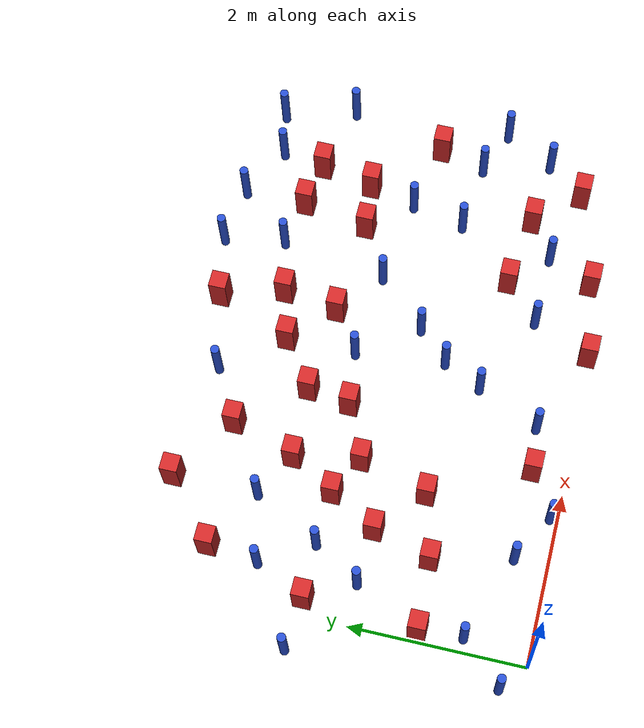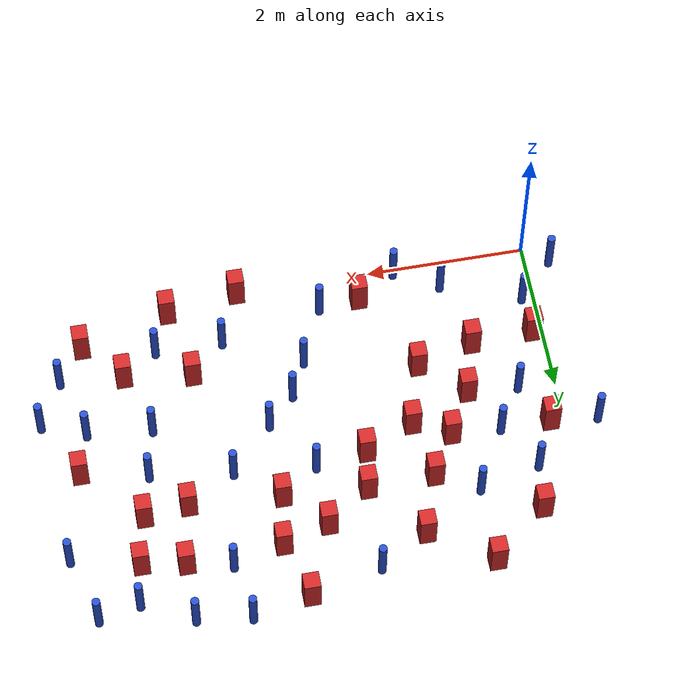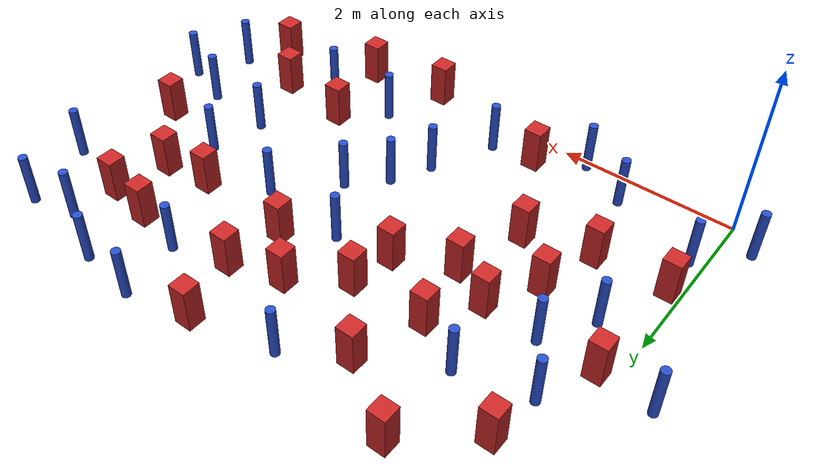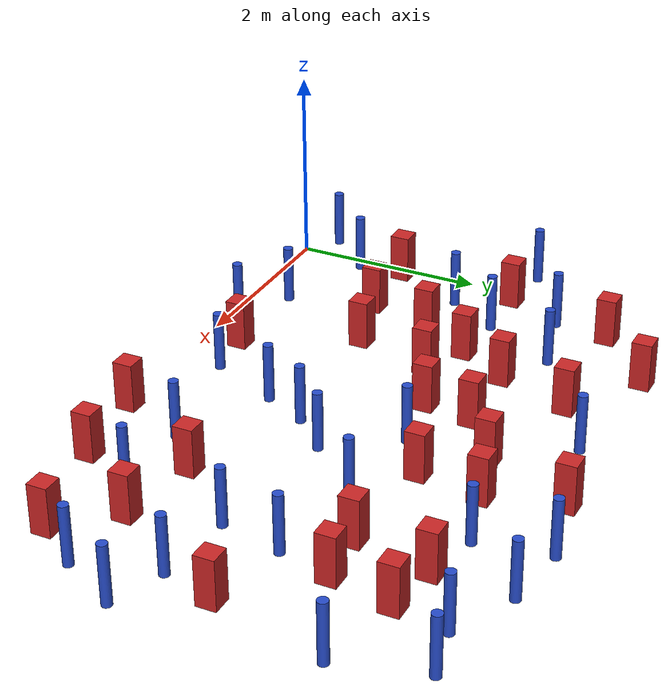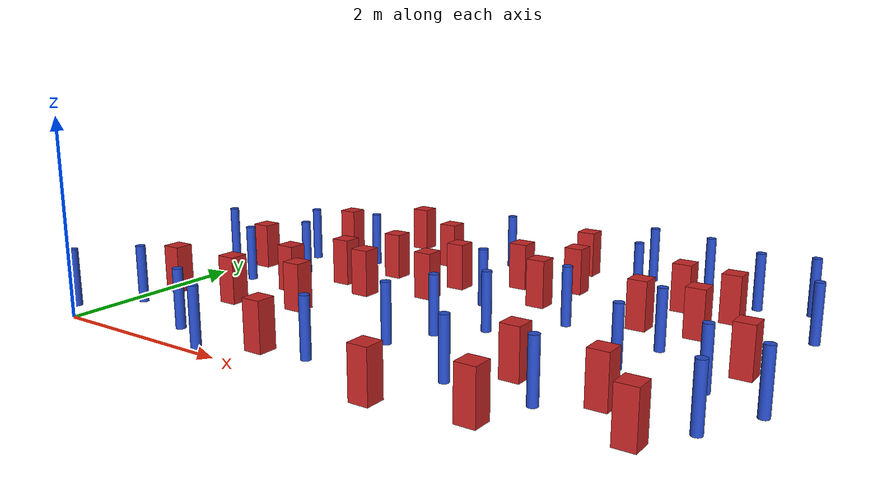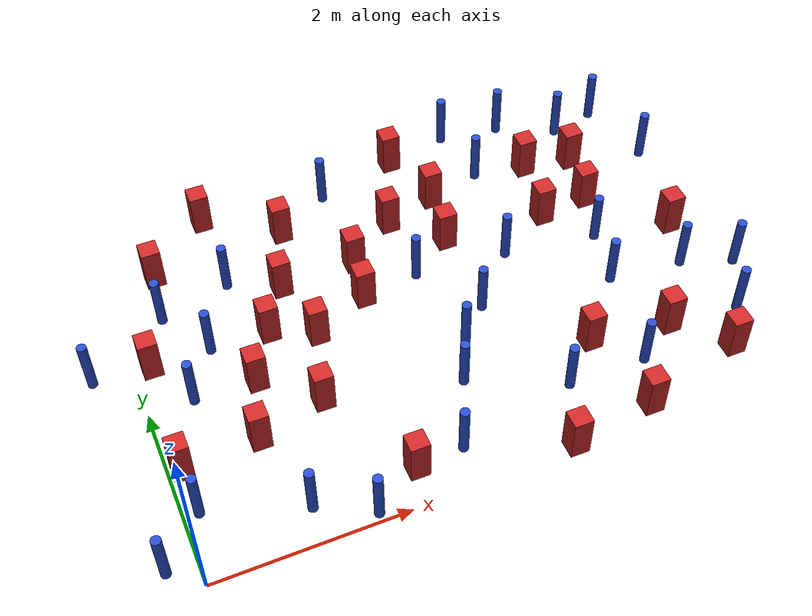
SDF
<sdf version="1.6">
 <model name="dense_93">
  <model name="pole_obstacle7">
   <static>true</static>
   <pose>6.06499540367 0.939890969461 -9.47619616065e-06 5.49618799737e-07 2.36310414061e-07 -1.550905348e-07</pose>
   <link name="link">
    <pose>0 0 0.3 0 -0 0</pose>
    <inertial>
     <mass>1</mass>
     <inertia><ixx>0.145833</ixx><ixy>0</ixy><ixz>0</ixz><iyy>0.145833</iyy><iyz>0</iyz><izz>0.125</izz></inertia>
    </inertial>
    <collision name="collision">
     <geometry><cylinder><radius>0.05</radius><length>.6</length></cylinder></geometry>
    </collision>
    <visual name="visual">
     <geometry><cylinder><radius>0.05</radius><length>.6</length></cylinder></geometry>
     <material>
      <script><name>Gazebo/Blue</name><uri>file://media/materials/scripts/gazebo.material</uri></script>
     </material>
    </visual>
   </link>
  </model>
  <model name="square_post_obstacle7">
   <static>true</static>
   <pose>5.3043008412 2.97691154818 -6.11067671241e-07 -5.50515727128e-06 -8.79689657224e-07 2.37013304536e-05</pose>
   <link name="link">
    <pose>0 0 0.25 0 -0 0</pose>
    <inertial>
     <mass>100</mass>
     <inertia>
      <ixx>0.166667</ixx>
      <ixy>0</ixy>
      <ixz>0</ixz>
      <iyy>0.166667</iyy>
      <iyz>0</iyz>
      <izz>0.166667</izz>
     </inertia>
    </inertial>
    <collision name="collision"><geometry><box><size>.2 .2 .5</size></box></geometry></collision>
    <visual name="visual">
     <geometry><box><size>.2 .2 .5</size></box></geometry>
     <material>
      <script><name>Gazebo/Red</name><uri>file://media/materials/scripts/gazebo.material</uri></script>
     </material>
    </visual>
   </link>
  </model>
  <model name="square_post_obstacle8">
   <static>true</static>
   <pose>4.60553726486 0.183681502526 -6.11067671241e-07 -5.50515727128e-06 -8.79689657224e-07 2.37013304536e-05</pose>
   <link name="link">
    <pose>0 0 0.25 0 -0 0</pose>
    <inertial>
     <mass>100</mass>
     <inertia>
      <ixx>0.166667</ixx>
      <ixy>0</ixy>
      <ixz>0</ixz>
      <iyy>0.166667</iyy>
      <iyz>0</iyz>
      <izz>0.166667</izz>
     </inertia>
    </inertial>
    <collision name="collision"><geometry><box><size>.2 .2 .5</size></box></geometry></collision>
    <visual name="visual">
     <geometry><box><size>.2 .2 .5</size></box></geometry>
     <material>
      <script><name>Gazebo/Red</name><uri>file://media/materials/scripts/gazebo.material</uri></script>
     </material>
    </visual>
   </link>
  </model>
  <model name="square_post_obstacle15">
   <static>true</static>
   <pose>5.73411436721 0.501680926353 -6.11067671241e-07 -5.50515727128e-06 -8.79689657224e-07 2.37013304536e-05</pose>
   <link name="link">
    <pose>0 0 0.25 0 -0 0</pose>
    <inertial>
     <mass>100</mass>
     <inertia>
      <ixx>0.166667</ixx>
      <ixy>0</ixy>
      <ixz>0</ixz>
      <iyy>0.166667</iyy>
      <iyz>0</iyz>
      <izz>0.166667</izz>
     </inertia>
    </inertial>
    <collision name="collision"><geometry><box><size>.2 .2 .5</size></box></geometry></collision>
    <visual name="visual">
     <geometry><box><size>.2 .2 .5</size></box></geometry>
     <material>
      <script><name>Gazebo/Red</name><uri>file://media/materials/scripts/gazebo.material</uri></script>
     </material>
    </visual>
   </link>
  </model>
  <model name="square_post_obstacle17">
   <static>true</static>
   <pose>1.22932830109 4.28504683522 -6.11067671241e-07 -5.50515727128e-06 -8.79689657224e-07 2.37013304536e-05</pose>
   <link name="link">
    <pose>0 0 0.25 0 -0 0</pose>
    <inertial>
     <mass>100</mass>
     <inertia>
      <ixx>0.166667</ixx>
      <ixy>0</ixy>
      <ixz>0</ixz>
      <iyy>0.166667</iyy>
      <iyz>0</iyz>
      <izz>0.166667</izz>
     </inertia>
    </inertial>
    <collision name="collision"><geometry><box><size>.2 .2 .5</size></box></geometry></collision>
    <visual name="visual">
     <geometry><box><size>.2 .2 .5</size></box></geometry>
     <material>
      <script><name>Gazebo/Red</name><uri>file://media/materials/scripts/gazebo.material</uri></script>
     </material>
    </visual>
   </link>
  </model>
  <model name="square_post_obstacle19">
   <static>true</static>
   <pose>0.535574568028 3.69324982012 -6.11067671241e-07 -5.50515727128e-06 -8.79689657224e-07 2.37013304536e-05</pose>
   <link name="link">
    <pose>0 0 0.25 0 -0 0</pose>
    <inertial>
     <mass>100</mass>
     <inertia>
      <ixx>0.166667</ixx>
      <ixy>0</ixy>
      <ixz>0</ixz>
      <iyy>0.166667</iyy>
      <iyz>0</iyz>
      <izz>0.166667</izz>
     </inertia>
    </inertial>
    <collision name="collision"><geometry><box><size>.2 .2 .5</size></box></geometry></collision>
    <visual name="visual">
     <geometry><box><size>.2 .2 .5</size></box></geometry>
     <material>
      <script><name>Gazebo/Red</name><uri>file://media/materials/scripts/gazebo.material</uri></script>
     </material>
    </visual>
   </link>
  </model>
  <model name="pole_obstacle29">
   <static>true</static>
   <pose>-0.407549543129 2.58789013498 -9.47619616065e-06 5.49618799738e-07 2.36310414065e-07 -1.55090534798e-07</pose>
   <link name="link">
    <pose>0 0 0.3 0 -0 0</pose>
    <inertial>
     <mass>1</mass>
     <inertia><ixx>0.145833</ixx><ixy>0</ixy><ixz>0</ixz><iyy>0.145833</iyy><iyz>0</iyz><izz>0.125</izz></inertia>
    </inertial>
    <collision name="collision">
     <geometry><cylinder><radius>0.05</radius><length>.6</length></cylinder></geometry>
    </collision>
    <visual name="visual">
     <geometry><cylinder><radius>0.05</radius><length>.6</length></cylinder></geometry>
     <material>
      <script><name>Gazebo/Blue</name><uri>file://media/materials/scripts/gazebo.material</uri></script>
     </material>
    </visual>
   </link>
  </model>
  <model name="pole_obstacle30">
   <static>true</static>
   <pose>-0.304566563391 0.254998979824 -9.47619616065e-06 5.49618799738e-07 2.36310414056e-07 -1.55090534803e-07</pose>
   <link name="link">
    <pose>0 0 0.3 0 -0 0</pose>
    <inertial>
     <mass>1</mass>
     <inertia><ixx>0.145833</ixx><ixy>0</ixy><ixz>0</ixz><iyy>0.145833</iyy><iyz>0</iyz><izz>0.125</izz></inertia>
    </inertial>
    <collision name="collision">
     <geometry><cylinder><radius>0.05</radius><length>.6</length></cylinder></geometry>
    </collision>
    <visual name="visual">
     <geometry><cylinder><radius>0.05</radius><length>.6</length></cylinder></geometry>
     <material>
      <script><name>Gazebo/Blue</name><uri>file://media/materials/scripts/gazebo.material</uri></script>
     </material>
    </visual>
   </link>
  </model>
  <model name="pole_obstacle32">
   <static>true</static>
   <pose>4.22618861333 4.52051680901 -9.47619616065e-06 5.49618799737e-07 2.36310414037e-07 -1.55090534814e-07</pose>
   <link name="link">
    <pose>0 0 0.3 0 -0 0</pose>
    <inertial>
     <mass>1</mass>
     <inertia><ixx>0.145833</ixx><ixy>0</ixy><ixz>0</ixz><iyy>0.145833</iyy><iyz>0</iyz><izz>0.125</izz></inertia>
    </inertial>
    <collision name="collision">
     <geometry><cylinder><radius>0.05</radius><length>.6</length></cylinder></geometry>
    </collision>
    <visual name="visual">
     <geometry><cylinder><radius>0.05</radius><length>.6</length></cylinder></geometry>
     <material>
      <script><name>Gazebo/Blue</name><uri>file://media/materials/scripts/gazebo.material</uri></script>
     </material>
    </visual>
   </link>
  </model>
  <model name="square_post_obstacle32">
   <static>true</static>
   <pose>2.49744956392 2.56830694405 -6.11067671241e-07 -5.50515727128e-06 -8.79689657224e-07 2.37013304536e-05</pose>
   <link name="link">
    <pose>0 0 0.25 0 -0 0</pose>
    <inertial>
     <mass>100</mass>
     <inertia>
      <ixx>0.166667</ixx>
      <ixy>0</ixy>
      <ixz>0</ixz>
      <iyy>0.166667</iyy>
      <iyz>0</iyz>
      <izz>0.166667</izz>
     </inertia>
    </inertial>
    <collision name="collision"><geometry><box><size>.2 .2 .5</size></box></geometry></collision>
    <visual name="visual">
     <geometry><box><size>.2 .2 .5</size></box></geometry>
     <material>
      <script><name>Gazebo/Red</name><uri>file://media/materials/scripts/gazebo.material</uri></script>
     </material>
    </visual>
   </link>
  </model>
  <model name="pole_obstacle43">
   <static>true</static>
   <pose>0.150255854379 0.738384837413 -9.47619616065e-06 5.49618799737e-07 2.36310414056e-07 -1.55090534802e-07</pose>
   <link name="link">
    <pose>0 0 0.3 0 -0 0</pose>
    <inertial>
     <mass>1</mass>
     <inertia><ixx>0.145833</ixx><ixy>0</ixy><ixz>0</ixz><iyy>0.145833</iyy><iyz>0</iyz><izz>0.125</izz></inertia>
    </inertial>
    <collision name="collision">
     <geometry><cylinder><radius>0.05</radius><length>.6</length></cylinder></geometry>
    </collision>
    <visual name="visual">
     <geometry><cylinder><radius>0.05</radius><length>.6</length></cylinder></geometry>
     <material>
      <script><name>Gazebo/Blue</name><uri>file://media/materials/scripts/gazebo.material</uri></script>
     </material>
    </visual>
   </link>
  </model>
  <model name="pole_obstacle51">
   <static>true</static>
   <pose>3.24884724346 1.62343270198 -9.47619616065e-06 5.49618799737e-07 2.36310414072e-07 -1.55090534793e-07</pose>
   <link name="link">
    <pose>0 0 0.3 0 -0 0</pose>
    <inertial>
     <mass>1</mass>
     <inertia><ixx>0.145833</ixx><ixy>0</ixy><ixz>0</ixz><iyy>0.145833</iyy><iyz>0</iyz><izz>0.125</izz></inertia>
    </inertial>
    <collision name="collision">
     <geometry><cylinder><radius>0.05</radius><length>.6</length></cylinder></geometry>
    </collision>
    <visual name="visual">
     <geometry><cylinder><radius>0.05</radius><length>.6</length></cylinder></geometry>
     <material>
      <script><name>Gazebo/Blue</name><uri>file://media/materials/scripts/gazebo.material</uri></script>
     </material>
    </visual>
   </link>
  </model>
  <model name="pole_obstacle52">
   <static>true</static>
   <pose>4.34293351025 3.81115949983 -9.47619616065e-06 5.49618799738e-07 2.36310414051e-07 -1.55090534805e-07</pose>
   <link name="link">
    <pose>0 0 0.3 0 -0 0</pose>
    <inertial>
     <mass>1</mass>
     <inertia><ixx>0.145833</ixx><ixy>0</ixy><ixz>0</ixz><iyy>0.145833</iyy><iyz>0</iyz><izz>0.125</izz></inertia>
    </inertial>
    <collision name="collision">
     <geometry><cylinder><radius>0.05</radius><length>.6</length></cylinder></geometry>
    </collision>
    <visual name="visual">
     <geometry><cylinder><radius>0.05</radius><length>.6</length></cylinder></geometry>
     <material>
      <script><name>Gazebo/Blue</name><uri>file://media/materials/scripts/gazebo.material</uri></script>
     </material>
    </visual>
   </link>
  </model>
  <model name="pole_obstacle55">
   <static>true</static>
   <pose>2.70172302233 0.445536969924 -9.47619616065e-06 5.49618799738e-07 2.36310414074e-07 -1.55090534794e-07</pose>
   <link name="link">
    <pose>0 0 0.3 0 -0 0</pose>
    <inertial>
     <mass>1</mass>
     <inertia><ixx>0.145833</ixx><ixy>0</ixy><ixz>0</ixz><iyy>0.145833</iyy><iyz>0</iyz><izz>0.125</izz></inertia>
    </inertial>
    <collision name="collision">
     <geometry><cylinder><radius>0.05</radius><length>.6</length></cylinder></geometry>
    </collision>
    <visual name="visual">
     <geometry><cylinder><radius>0.05</radius><length>.6</length></cylinder></geometry>
     <material>
      <script><name>Gazebo/Blue</name><uri>file://media/materials/scripts/gazebo.material</uri></script>
     </material>
    </visual>
   </link>
  </model>
  <model name="pole_obstacle64">
   <static>true</static>
   <pose>0.807548856404 2.53919677581 -9.47619616065e-06 5.49618799737e-07 2.36310414066e-07 -1.55090534797e-07</pose>
   <link name="link">
    <pose>0 0 0.3 0 -0 0</pose>
    <inertial>
     <mass>1</mass>
     <inertia><ixx>0.145833</ixx><ixy>0</ixy><ixz>0</ixz><iyy>0.145833</iyy><iyz>0</iyz><izz>0.125</izz></inertia>
    </inertial>
    <collision name="collision">
     <geometry><cylinder><radius>0.05</radius><length>.6</length></cylinder></geometry>
    </collision>
    <visual name="visual">
     <geometry><cylinder><radius>0.05</radius><length>.6</length></cylinder></geometry>
     <material>
      <script><name>Gazebo/Blue</name><uri>file://media/materials/scripts/gazebo.material</uri></script>
     </material>
    </visual>
   </link>
  </model>
  <model name="pole_obstacle66">
   <static>true</static>
   <pose>4.8318868634 0.708420121256 -9.47619616065e-06 5.49618799737e-07 2.36310414061e-07 -1.550905348e-07</pose>
   <link name="link">
    <pose>0 0 0.3 0 -0 0</pose>
    <inertial>
     <mass>1</mass>
     <inertia><ixx>0.145833</ixx><ixy>0</ixy><ixz>0</ixz><iyy>0.145833</iyy><iyz>0</iyz><izz>0.125</izz></inertia>
    </inertial>
    <collision name="collision">
     <geometry><cylinder><radius>0.05</radius><length>.6</length></cylinder></geometry>
    </collision>
    <visual name="visual">
     <geometry><cylinder><radius>0.05</radius><length>.6</length></cylinder></geometry>
     <material>
      <script><name>Gazebo/Blue</name><uri>file://media/materials/scripts/gazebo.material</uri></script>
     </material>
    </visual>
   </link>
  </model>
  <model name="square_post_obstacle57">
   <static>true</static>
   <pose>3.13172925563 3.46324236781 -6.11067671241e-07 -5.50515727128e-06 -8.79689657224e-07 2.37013304536e-05</pose>
   <link name="link">
    <pose>0 0 0.25 0 -0 0</pose>
    <inertial>
     <mass>100</mass>
     <inertia>
      <ixx>0.166667</ixx>
      <ixy>0</ixy>
      <ixz>0</ixz>
      <iyy>0.166667</iyy>
      <iyz>0</iyz>
      <izz>0.166667</izz>
     </inertia>
    </inertial>
    <collision name="collision"><geometry><box><size>.2 .2 .5</size></box></geometry></collision>
    <visual name="visual">
     <geometry><box><size>.2 .2 .5</size></box></geometry>
     <material>
      <script><name>Gazebo/Red</name><uri>file://media/materials/scripts/gazebo.material</uri></script>
     </material>
    </visual>
   </link>
  </model>
  <model name="square_post_obstacle59">
   <static>true</static>
   <pose>0.133105712552 1.23958306624 -6.11067671241e-07 -5.50515727128e-06 -8.79689657224e-07 2.37013304536e-05</pose>
   <link name="link">
    <pose>0 0 0.25 0 -0 0</pose>
    <inertial>
     <mass>100</mass>
     <inertia>
      <ixx>0.166667</ixx>
      <ixy>0</ixy>
      <ixz>0</ixz>
      <iyy>0.166667</iyy>
      <iyz>0</iyz>
      <izz>0.166667</izz>
     </inertia>
    </inertial>
    <collision name="collision"><geometry><box><size>.2 .2 .5</size></box></geometry></collision>
    <visual name="visual">
     <geometry><box><size>.2 .2 .5</size></box></geometry>
     <material>
      <script><name>Gazebo/Red</name><uri>file://media/materials/scripts/gazebo.material</uri></script>
     </material>
    </visual>
   </link>
  </model>
  <model name="square_post_obstacle61">
   <static>true</static>
   <pose>3.50031738391 4.35792662082 -6.11067671241e-07 -5.50515727128e-06 -8.79689657224e-07 2.37013304536e-05</pose>
   <link name="link">
    <pose>0 0 0.25 0 -0 0</pose>
    <inertial>
     <mass>100</mass>
     <inertia>
      <ixx>0.166667</ixx>
      <ixy>0</ixy>
      <ixz>0</ixz>
      <iyy>0.166667</iyy>
      <iyz>0</iyz>
      <izz>0.166667</izz>
     </inertia>
    </inertial>
    <collision name="collision"><geometry><box><size>.2 .2 .5</size></box></geometry></collision>
    <visual name="visual">
     <geometry><box><size>.2 .2 .5</size></box></geometry>
     <material>
      <script><name>Gazebo/Red</name><uri>file://media/materials/scripts/gazebo.material</uri></script>
     </material>
    </visual>
   </link>
  </model>
  <model name="pole_obstacle75">
   <static>true</static>
   <pose>2.60426254943 4.14675679836 -9.47619616065e-06 5.49618799738e-07 2.3631041406e-07 -1.55090534801e-07</pose>
   <link name="link">
    <pose>0 0 0.3 0 -0 0</pose>
    <inertial>
     <mass>1</mass>
     <inertia><ixx>0.145833</ixx><ixy>0</ixy><ixz>0</ixz><iyy>0.145833</iyy><iyz>0</iyz><izz>0.125</izz></inertia>
    </inertial>
    <collision name="collision">
     <geometry><cylinder><radius>0.05</radius><length>.6</length></cylinder></geometry>
    </collision>
    <visual name="visual">
     <geometry><cylinder><radius>0.05</radius><length>.6</length></cylinder></geometry>
     <material>
      <script><name>Gazebo/Blue</name><uri>file://media/materials/scripts/gazebo.material</uri></script>
     </material>
    </visual>
   </link>
  </model>
  <model name="pole_obstacle78">
   <static>true</static>
   <pose>6.26607805968 3.40137826035 -9.47619616065e-06 5.49618799738e-07 2.36310414051e-07 -1.55090534805e-07</pose>
   <link name="link">
    <pose>0 0 0.3 0 -0 0</pose>
    <inertial>
     <mass>1</mass>
     <inertia><ixx>0.145833</ixx><ixy>0</ixy><ixz>0</ixz><iyy>0.145833</iyy><iyz>0</iyz><izz>0.125</izz></inertia>
    </inertial>
    <collision name="collision">
     <geometry><cylinder><radius>0.05</radius><length>.6</length></cylinder></geometry>
    </collision>
    <visual name="visual">
     <geometry><cylinder><radius>0.05</radius><length>.6</length></cylinder></geometry>
     <material>
      <script><name>Gazebo/Blue</name><uri>file://media/materials/scripts/gazebo.material</uri></script>
     </material>
    </visual>
   </link>
  </model>
  <model name="square_post_obstacle69">
   <static>true</static>
   <pose>3.61141509784 2.99364430802 -6.11067671241e-07 -5.50515727128e-06 -8.79689657224e-07 2.37013304536e-05</pose>
   <link name="link">
    <pose>0 0 0.25 0 -0 0</pose>
    <inertial>
     <mass>100</mass>
     <inertia>
      <ixx>0.166667</ixx>
      <ixy>0</ixy>
      <ixz>0</ixz>
      <iyy>0.166667</iyy>
      <iyz>0</iyz>
      <izz>0.166667</izz>
     </inertia>
    </inertial>
    <collision name="collision"><geometry><box><size>.2 .2 .5</size></box></geometry></collision>
    <visual name="visual">
     <geometry><box><size>.2 .2 .5</size></box></geometry>
     <material>
      <script><name>Gazebo/Red</name><uri>file://media/materials/scripts/gazebo.material</uri></script>
     </material>
    </visual>
   </link>
  </model>
  <model name="square_post_obstacle70">
   <static>true</static>
   <pose>2.57502859299 3.06822786968 -6.11067671241e-07 -5.50515727128e-06 -8.79689657224e-07 2.37013304536e-05</pose>
   <link name="link">
    <pose>0 0 0.25 0 -0 0</pose>
    <inertial>
     <mass>100</mass>
     <inertia>
      <ixx>0.166667</ixx>
      <ixy>0</ixy>
      <ixz>0</ixz>
      <iyy>0.166667</iyy>
      <iyz>0</iyz>
      <izz>0.166667</izz>
     </inertia>
    </inertial>
    <collision name="collision"><geometry><box><size>.2 .2 .5</size></box></geometry></collision>
    <visual name="visual">
     <geometry><box><size>.2 .2 .5</size></box></geometry>
     <material>
      <script><name>Gazebo/Red</name><uri>file://media/materials/scripts/gazebo.material</uri></script>
     </material>
    </visual>
   </link>
  </model>
  <model name="square_post_obstacle74">
   <static>true</static>
   <pose>0.923799270827 1.28317794028 -6.11067671241e-07 -5.50515727128e-06 -8.79689657224e-07 2.37013304536e-05</pose>
   <link name="link">
    <pose>0 0 0.25 0 -0 0</pose>
    <inertial>
     <mass>100</mass>
     <inertia>
      <ixx>0.166667</ixx>
      <ixy>0</ixy>
      <ixz>0</ixz>
      <iyy>0.166667</iyy>
      <iyz>0</iyz>
      <izz>0.166667</izz>
     </inertia>
    </inertial>
    <collision name="collision"><geometry><box><size>.2 .2 .5</size></box></geometry></collision>
    <visual name="visual">
     <geometry><box><size>.2 .2 .5</size></box></geometry>
     <material>
      <script><name>Gazebo/Red</name><uri>file://media/materials/scripts/gazebo.material</uri></script>
     </material>
    </visual>
   </link>
  </model>
  <model name="pole_obstacle87">
   <static>true</static>
   <pose>5.1644105275 2.4296066887 -9.47619616065e-06 5.49618799738e-07 2.36310414051e-07 -1.55090534805e-07</pose>
   <link name="link">
    <pose>0 0 0.3 0 -0 0</pose>
    <inertial>
     <mass>1</mass>
     <inertia><ixx>0.145833</ixx><ixy>0</ixy><ixz>0</ixz><iyy>0.145833</iyy><iyz>0</iyz><izz>0.125</izz></inertia>
    </inertial>
    <collision name="collision">
     <geometry><cylinder><radius>0.05</radius><length>.6</length></cylinder></geometry>
    </collision>
    <visual name="visual">
     <geometry><cylinder><radius>0.05</radius><length>.6</length></cylinder></geometry>
     <material>
      <script><name>Gazebo/Blue</name><uri>file://media/materials/scripts/gazebo.material</uri></script>
     </material>
    </visual>
   </link>
  </model>
  <model name="square_post_obstacle87">
   <static>true</static>
   <pose>2.19317262747 0.392966858584 -6.11067671241e-07 -5.50515727128e-06 -8.79689657224e-07 2.37013304536e-05</pose>
   <link name="link">
    <pose>0 0 0.25 0 -0 0</pose>
    <inertial>
     <mass>100</mass>
     <inertia>
      <ixx>0.166667</ixx>
      <ixy>0</ixy>
      <ixz>0</ixz>
      <iyy>0.166667</iyy>
      <iyz>0</iyz>
      <izz>0.166667</izz>
     </inertia>
    </inertial>
    <collision name="collision"><geometry><box><size>.2 .2 .5</size></box></geometry></collision>
    <visual name="visual">
     <geometry><box><size>.2 .2 .5</size></box></geometry>
     <material>
      <script><name>Gazebo/Red</name><uri>file://media/materials/scripts/gazebo.material</uri></script>
     </material>
    </visual>
   </link>
  </model>
  <model name="pole_obstacle99">
   <static>true</static>
   <pose>5.83577588096 1.72247116176 -9.47619616065e-06 5.49618799738e-07 2.36310414071e-07 -1.55090534796e-07</pose>
   <link name="link">
    <pose>0 0 0.3 0 -0 0</pose>
    <inertial>
     <mass>1</mass>
     <inertia><ixx>0.145833</ixx><ixy>0</ixy><ixz>0</ixz><iyy>0.145833</iyy><iyz>0</iyz><izz>0.125</izz></inertia>
    </inertial>
    <collision name="collision">
     <geometry><cylinder><radius>0.05</radius><length>.6</length></cylinder></geometry>
    </collision>
    <visual name="visual">
     <geometry><cylinder><radius>0.05</radius><length>.6</length></cylinder></geometry>
     <material>
      <script><name>Gazebo/Blue</name><uri>file://media/materials/scripts/gazebo.material</uri></script>
     </material>
    </visual>
   </link>
  </model>
  <model name="pole_obstacle100">
   <static>true</static>
   <pose>1.68849661687 0.0884509182559 -9.47619616065e-06 5.49618799737e-07 2.36310414064e-07 -1.55090534797e-07</pose>
   <link name="link">
    <pose>0 0 0.3 0 -0 0</pose>
    <inertial>
     <mass>1</mass>
     <inertia><ixx>0.145833</ixx><ixy>0</ixy><ixz>0</ixz><iyy>0.145833</iyy><iyz>0</iyz><izz>0.125</izz></inertia>
    </inertial>
    <collision name="collision">
     <geometry><cylinder><radius>0.05</radius><length>.6</length></cylinder></geometry>
    </collision>
    <visual name="visual">
     <geometry><cylinder><radius>0.05</radius><length>.6</length></cylinder></geometry>
     <material>
      <script><name>Gazebo/Blue</name><uri>file://media/materials/scripts/gazebo.material</uri></script>
     </material>
    </visual>
   </link>
  </model>
  <model name="pole_obstacle101">
   <static>true</static>
   <pose>3.60043306226 1.98736127653 -9.47619616065e-06 5.49618799737e-07 2.36310414056e-07 -1.55090534804e-07</pose>
   <link name="link">
    <pose>0 0 0.3 0 -0 0</pose>
    <inertial>
     <mass>1</mass>
     <inertia><ixx>0.145833</ixx><ixy>0</ixy><ixz>0</ixz><iyy>0.145833</iyy><iyz>0</iyz><izz>0.125</izz></inertia>
    </inertial>
    <collision name="collision">
     <geometry><cylinder><radius>0.05</radius><length>.6</length></cylinder></geometry>
    </collision>
    <visual name="visual">
     <geometry><cylinder><radius>0.05</radius><length>.6</length></cylinder></geometry>
     <material>
      <script><name>Gazebo/Blue</name><uri>file://media/materials/scripts/gazebo.material</uri></script>
     </material>
    </visual>
   </link>
  </model>
  <model name="pole_obstacle102">
   <static>true</static>
   <pose>3.02983289638 1.17300933637 -9.47619616065e-06 5.49618799737e-07 2.36310414072e-07 -1.55090534793e-07</pose>
   <link name="link">
    <pose>0 0 0.3 0 -0 0</pose>
    <inertial>
     <mass>1</mass>
     <inertia><ixx>0.145833</ixx><ixy>0</ixy><ixz>0</ixz><iyy>0.145833</iyy><iyz>0</iyz><izz>0.125</izz></inertia>
    </inertial>
    <collision name="collision">
     <geometry><cylinder><radius>0.05</radius><length>.6</length></cylinder></geometry>
    </collision>
    <visual name="visual">
     <geometry><cylinder><radius>0.05</radius><length>.6</length></cylinder></geometry>
     <material>
      <script><name>Gazebo/Blue</name><uri>file://media/materials/scripts/gazebo.material</uri></script>
     </material>
    </visual>
   </link>
  </model>
  <model name="square_post_obstacle111">
   <static>true</static>
   <pose>5.27441580626 1.00555682783 -6.11067671241e-07 -5.50515727128e-06 -8.79689657224e-07 2.37013304536e-05</pose>
   <link name="link">
    <pose>0 0 0.25 0 -0 0</pose>
    <inertial>
     <mass>100</mass>
     <inertia>
      <ixx>0.166667</ixx>
      <ixy>0</ixy>
      <ixz>0</ixz>
      <iyy>0.166667</iyy>
      <iyz>0</iyz>
      <izz>0.166667</izz>
     </inertia>
    </inertial>
    <collision name="collision"><geometry><box><size>.2 .2 .5</size></box></geometry></collision>
    <visual name="visual">
     <geometry><box><size>.2 .2 .5</size></box></geometry>
     <material>
      <script><name>Gazebo/Red</name><uri>file://media/materials/scripts/gazebo.material</uri></script>
     </material>
    </visual>
   </link>
  </model>
  <model name="square_post_obstacle117">
   <static>true</static>
   <pose>1.42630835845 2.50728604025 -6.11067671241e-07 -5.50515727128e-06 -8.79689657224e-07 2.37013304536e-05</pose>
   <link name="link">
    <pose>0 0 0.25 0 -0 0</pose>
    <inertial>
     <mass>100</mass>
     <inertia>
      <ixx>0.166667</ixx>
      <ixy>0</ixy>
      <ixz>0</ixz>
      <iyy>0.166667</iyy>
      <iyz>0</iyz>
      <izz>0.166667</izz>
     </inertia>
    </inertial>
    <collision name="collision"><geometry><box><size>.2 .2 .5</size></box></geometry></collision>
    <visual name="visual">
     <geometry><box><size>.2 .2 .5</size></box></geometry>
     <material>
      <script><name>Gazebo/Red</name><uri>file://media/materials/scripts/gazebo.material</uri></script>
     </material>
    </visual>
   </link>
  </model>
  <model name="pole_obstacle119">
   <static>true</static>
   <pose>4.89741241371 4.42916211219 -9.47619616065e-06 5.49618799737e-07 2.36310414037e-07 -1.55090534814e-07</pose>
   <link name="link">
    <pose>0 0 0.3 0 -0 0</pose>
    <inertial>
     <mass>1</mass>
     <inertia><ixx>0.145833</ixx><ixy>0</ixy><ixz>0</ixz><iyy>0.145833</iyy><iyz>0</iyz><izz>0.125</izz></inertia>
    </inertial>
    <collision name="collision">
     <geometry><cylinder><radius>0.05</radius><length>.6</length></cylinder></geometry>
    </collision>
    <visual name="visual">
     <geometry><cylinder><radius>0.05</radius><length>.6</length></cylinder></geometry>
     <material>
      <script><name>Gazebo/Blue</name><uri>file://media/materials/scripts/gazebo.material</uri></script>
     </material>
    </visual>
   </link>
  </model>
  <model name="pole_obstacle131">
   <static>true</static>
   <pose>4.14506613045 2.57159284647 -9.47619616065e-06 5.49618799738e-07 2.36310414051e-07 -1.55090534805e-07</pose>
   <link name="link">
    <pose>0 0 0.3 0 -0 0</pose>
    <inertial>
     <mass>1</mass>
     <inertia><ixx>0.145833</ixx><ixy>0</ixy><ixz>0</ixz><iyy>0.145833</iyy><iyz>0</iyz><izz>0.125</izz></inertia>
    </inertial>
    <collision name="collision">
     <geometry><cylinder><radius>0.05</radius><length>.6</length></cylinder></geometry>
    </collision>
    <visual name="visual">
     <geometry><cylinder><radius>0.05</radius><length>.6</length></cylinder></geometry>
     <material>
      <script><name>Gazebo/Blue</name><uri>file://media/materials/scripts/gazebo.material</uri></script>
     </material>
    </visual>
   </link>
  </model>
  <model name="square_post_obstacle146">
   <static>true</static>
   <pose>4.89703522449 3.68888544081 -6.11067671241e-07 -5.50515727128e-06 -8.79689657224e-07 2.37013304536e-05</pose>
   <link name="link">
    <pose>0 0 0.25 0 -0 0</pose>
    <inertial>
     <mass>100</mass>
     <inertia>
      <ixx>0.166667</ixx>
      <ixy>0</ixy>
      <ixz>0</ixz>
      <iyy>0.166667</iyy>
      <iyz>0</iyz>
      <izz>0.166667</izz>
     </inertia>
    </inertial>
    <collision name="collision"><geometry><box><size>.2 .2 .5</size></box></geometry></collision>
    <visual name="visual">
     <geometry><box><size>.2 .2 .5</size></box></geometry>
     <material>
      <script><name>Gazebo/Red</name><uri>file://media/materials/scripts/gazebo.material</uri></script>
     </material>
    </visual>
   </link>
  </model>
  <model name="square_post_obstacle151">
   <static>true</static>
   <pose>5.98783676307 2.25779820436 -6.11067671241e-07 -5.50515727128e-06 -8.79689657224e-07 2.37013304536e-05</pose>
   <link name="link">
    <pose>0 0 0.25 0 -0 0</pose>
    <inertial>
     <mass>100</mass>
     <inertia>
      <ixx>0.166667</ixx>
      <ixy>0</ixy>
      <ixz>0</ixz>
      <iyy>0.166667</iyy>
      <iyz>0</iyz>
      <izz>0.166667</izz>
     </inertia>
    </inertial>
    <collision name="collision"><geometry><box><size>.2 .2 .5</size></box></geometry></collision>
    <visual name="visual">
     <geometry><box><size>.2 .2 .5</size></box></geometry>
     <material>
      <script><name>Gazebo/Red</name><uri>file://media/materials/scripts/gazebo.material</uri></script>
     </material>
    </visual>
   </link>
  </model>
  <model name="pole_obstacle162">
   <static>true</static>
   <pose>5.51948208065 4.11993387874 -9.47619616065e-06 5.49618799737e-07 2.36310414037e-07 -1.55090534814e-07</pose>
   <link name="link">
    <pose>0 0 0.3 0 -0 0</pose>
    <inertial>
     <mass>1</mass>
     <inertia><ixx>0.145833</ixx><ixy>0</ixy><ixz>0</ixz><iyy>0.145833</iyy><iyz>0</iyz><izz>0.125</izz></inertia>
    </inertial>
    <collision name="collision">
     <geometry><cylinder><radius>0.05</radius><length>.6</length></cylinder></geometry>
    </collision>
    <visual name="visual">
     <geometry><cylinder><radius>0.05</radius><length>.6</length></cylinder></geometry>
     <material>
      <script><name>Gazebo/Blue</name><uri>file://media/materials/scripts/gazebo.material</uri></script>
     </material>
    </visual>
   </link>
  </model>
  <model name="pole_obstacle164">
   <static>true</static>
   <pose>5.02915319416 1.80529590393 -9.47619616065e-06 5.49618799738e-07 2.36310414071e-07 -1.55090534796e-07</pose>
   <link name="link">
    <pose>0 0 0.3 0 -0 0</pose>
    <inertial>
     <mass>1</mass>
     <inertia><ixx>0.145833</ixx><ixy>0</ixy><ixz>0</ixz><iyy>0.145833</iyy><iyz>0</iyz><izz>0.125</izz></inertia>
    </inertial>
    <collision name="collision">
     <geometry><cylinder><radius>0.05</radius><length>.6</length></cylinder></geometry>
    </collision>
    <visual name="visual">
     <geometry><cylinder><radius>0.05</radius><length>.6</length></cylinder></geometry>
     <material>
      <script><name>Gazebo/Blue</name><uri>file://media/materials/scripts/gazebo.material</uri></script>
     </material>
    </visual>
   </link>
  </model>
  <model name="square_post_obstacle157">
   <static>true</static>
   <pose>1.6458032219 1.48368549345 -6.11067671241e-07 -5.50515727128e-06 -8.79689657224e-07 2.37013304536e-05</pose>
   <link name="link">
    <pose>0 0 0.25 0 -0 0</pose>
    <inertial>
     <mass>100</mass>
     <inertia>
      <ixx>0.166667</ixx>
      <ixy>0</ixy>
      <ixz>0</ixz>
      <iyy>0.166667</iyy>
      <iyz>0</iyz>
      <izz>0.166667</izz>
     </inertia>
    </inertial>
    <collision name="collision"><geometry><box><size>.2 .2 .5</size></box></geometry></collision>
    <visual name="visual">
     <geometry><box><size>.2 .2 .5</size></box></geometry>
     <material>
      <script><name>Gazebo/Red</name><uri>file://media/materials/scripts/gazebo.material</uri></script>
     </material>
    </visual>
   </link>
  </model>
  <model name="square_post_obstacle158">
   <static>true</static>
   <pose>4.7548620249 2.91591353319 -6.11067671241e-07 -5.50515727128e-06 -8.79689657224e-07 2.37013304536e-05</pose>
   <link name="link">
    <pose>0 0 0.25 0 -0 0</pose>
    <inertial>
     <mass>100</mass>
     <inertia>
      <ixx>0.166667</ixx>
      <ixy>0</ixy>
      <ixz>0</ixz>
      <iyy>0.166667</iyy>
      <iyz>0</iyz>
      <izz>0.166667</izz>
     </inertia>
    </inertial>
    <collision name="collision"><geometry><box><size>.2 .2 .5</size></box></geometry></collision>
    <visual name="visual">
     <geometry><box><size>.2 .2 .5</size></box></geometry>
     <material>
      <script><name>Gazebo/Red</name><uri>file://media/materials/scripts/gazebo.material</uri></script>
     </material>
    </visual>
   </link>
  </model>
  <model name="square_post_obstacle165">
   <static>true</static>
   <pose>3.70437155545 0.0417454656269 -6.11067671241e-07 -5.50515727128e-06 -8.79689657224e-07 2.37013304536e-05</pose>
   <link name="link">
    <pose>0 0 0.25 0 -0 0</pose>
    <inertial>
     <mass>100</mass>
     <inertia>
      <ixx>0.166667</ixx>
      <ixy>0</ixy>
      <ixz>0</ixz>
      <iyy>0.166667</iyy>
      <iyz>0</iyz>
      <izz>0.166667</izz>
     </inertia>
    </inertial>
    <collision name="collision"><geometry><box><size>.2 .2 .5</size></box></geometry></collision>
    <visual name="visual">
     <geometry><box><size>.2 .2 .5</size></box></geometry>
     <material>
      <script><name>Gazebo/Red</name><uri>file://media/materials/scripts/gazebo.material</uri></script>
     </material>
    </visual>
   </link>
  </model>
  <model name="pole_obstacle175">
   <static>true</static>
   <pose>1.13930284414 0.383257024781 -9.47619616065e-06 5.49618799737e-07 2.36310414064e-07 -1.55090534799e-07</pose>
   <link name="link">
    <pose>0 0 0.3 0 -0 0</pose>
    <inertial>
     <mass>1</mass>
     <inertia><ixx>0.145833</ixx><ixy>0</ixy><ixz>0</ixz><iyy>0.145833</iyy><iyz>0</iyz><izz>0.125</izz></inertia>
    </inertial>
    <collision name="collision">
     <geometry><cylinder><radius>0.05</radius><length>.6</length></cylinder></geometry>
    </collision>
    <visual name="visual">
     <geometry><cylinder><radius>0.05</radius><length>.6</length></cylinder></geometry>
     <material>
      <script><name>Gazebo/Blue</name><uri>file://media/materials/scripts/gazebo.material</uri></script>
     </material>
    </visual>
   </link>
  </model>
  <model name="pole_obstacle177">
   <static>true</static>
   <pose>3.98812587193 0.718261437214 -9.47619616065e-06 5.49618799738e-07 2.36310414077e-07 -1.55090534792e-07</pose>
   <link name="link">
    <pose>0 0 0.3 0 -0 0</pose>
    <inertial>
     <mass>1</mass>
     <inertia><ixx>0.145833</ixx><ixy>0</ixy><ixz>0</ixz><iyy>0.145833</iyy><iyz>0</iyz><izz>0.125</izz></inertia>
    </inertial>
    <collision name="collision">
     <geometry><cylinder><radius>0.05</radius><length>.6</length></cylinder></geometry>
    </collision>
    <visual name="visual">
     <geometry><cylinder><radius>0.05</radius><length>.6</length></cylinder></geometry>
     <material>
      <script><name>Gazebo/Blue</name><uri>file://media/materials/scripts/gazebo.material</uri></script>
     </material>
    </visual>
   </link>
  </model>
  <model name="square_post_obstacle175">
   <static>true</static>
   <pose>4.42491573831 1.1241980862 -6.11067671241e-07 -5.50515727128e-06 -8.79689657224e-07 2.37013304536e-05</pose>
   <link name="link">
    <pose>0 0 0.25 0 -0 0</pose>
    <inertial>
     <mass>100</mass>
     <inertia>
      <ixx>0.166667</ixx>
      <ixy>0</ixy>
      <ixz>0</ixz>
      <iyy>0.166667</iyy>
      <iyz>0</iyz>
      <izz>0.166667</izz>
     </inertia>
    </inertial>
    <collision name="collision"><geometry><box><size>.2 .2 .5</size></box></geometry></collision>
    <visual name="visual">
     <geometry><box><size>.2 .2 .5</size></box></geometry>
     <material>
      <script><name>Gazebo/Red</name><uri>file://media/materials/scripts/gazebo.material</uri></script>
     </material>
    </visual>
   </link>
  </model>
  <model name="pole_obstacle182">
   <static>true</static>
   <pose>0.473121304029 1.99558828276 -9.47619616065e-06 5.49618799737e-07 2.36310414055e-07 -1.55090534803e-07</pose>
   <link name="link">
    <pose>0 0 0.3 0 -0 0</pose>
    <inertial>
     <mass>1</mass>
     <inertia><ixx>0.145833</ixx><ixy>0</ixy><ixz>0</ixz><iyy>0.145833</iyy><iyz>0</iyz><izz>0.125</izz></inertia>
    </inertial>
    <collision name="collision">
     <geometry><cylinder><radius>0.05</radius><length>.6</length></cylinder></geometry>
    </collision>
    <visual name="visual">
     <geometry><cylinder><radius>0.05</radius><length>.6</length></cylinder></geometry>
     <material>
      <script><name>Gazebo/Blue</name><uri>file://media/materials/scripts/gazebo.material</uri></script>
     </material>
    </visual>
   </link>
  </model>
  <model name="pole_obstacle186">
   <static>true</static>
   <pose>1.22152732815 3.31450880866 -9.47619616065e-06 5.49618799737e-07 2.36310414062e-07 -1.55090534798e-07</pose>
   <link name="link">
    <pose>0 0 0.3 0 -0 0</pose>
    <inertial>
     <mass>1</mass>
     <inertia><ixx>0.145833</ixx><ixy>0</ixy><ixz>0</ixz><iyy>0.145833</iyy><iyz>0</iyz><izz>0.125</izz></inertia>
    </inertial>
    <collision name="collision">
     <geometry><cylinder><radius>0.05</radius><length>.6</length></cylinder></geometry>
    </collision>
    <visual name="visual">
     <geometry><cylinder><radius>0.05</radius><length>.6</length></cylinder></geometry>
     <material>
      <script><name>Gazebo/Blue</name><uri>file://media/materials/scripts/gazebo.material</uri></script>
     </material>
    </visual>
   </link>
  </model>
  <model name="pole_obstacle189">
   <static>true</static>
   <pose>6.37594746324 1.51747920081 -9.47619616065e-06 5.49618799738e-07 2.36310414071e-07 -1.55090534796e-07</pose>
   <link name="link">
    <pose>0 0 0.3 0 -0 0</pose>
    <inertial>
     <mass>1</mass>
     <inertia><ixx>0.145833</ixx><ixy>0</ixy><ixz>0</ixz><iyy>0.145833</iyy><iyz>0</iyz><izz>0.125</izz></inertia>
    </inertial>
    <collision name="collision">
     <geometry><cylinder><radius>0.05</radius><length>.6</length></cylinder></geometry>
    </collision>
    <visual name="visual">
     <geometry><cylinder><radius>0.05</radius><length>.6</length></cylinder></geometry>
     <material>
      <script><name>Gazebo/Blue</name><uri>file://media/materials/scripts/gazebo.material</uri></script>
     </material>
    </visual>
   </link>
  </model>
  <model name="square_post_obstacle198">
   <static>true</static>
   <pose>3.71157330862 3.63612756121 -6.11067671241e-07 -5.50515727128e-06 -8.79689657224e-07 2.37013304536e-05</pose>
   <link name="link">
    <pose>0 0 0.25 0 -0 0</pose>
    <inertial>
     <mass>100</mass>
     <inertia>
      <ixx>0.166667</ixx>
      <ixy>0</ixy>
      <ixz>0</ixz>
      <iyy>0.166667</iyy>
      <iyz>0</iyz>
      <izz>0.166667</izz>
     </inertia>
    </inertial>
    <collision name="collision"><geometry><box><size>.2 .2 .5</size></box></geometry></collision>
    <visual name="visual">
     <geometry><box><size>.2 .2 .5</size></box></geometry>
     <material>
      <script><name>Gazebo/Red</name><uri>file://media/materials/scripts/gazebo.material</uri></script>
     </material>
    </visual>
   </link>
  </model>
  <model name="pole_obstacle202">
   <static>true</static>
   <pose>0.456409857814 3.11784627603 -9.47619616065e-06 5.49618799738e-07 2.36310414066e-07 -1.55090534797e-07</pose>
   <link name="link">
    <pose>0 0 0.3 0 -0 0</pose>
    <inertial>
     <mass>1</mass>
     <inertia><ixx>0.145833</ixx><ixy>0</ixy><ixz>0</ixz><iyy>0.145833</iyy><iyz>0</iyz><izz>0.125</izz></inertia>
    </inertial>
    <collision name="collision">
     <geometry><cylinder><radius>0.05</radius><length>.6</length></cylinder></geometry>
    </collision>
    <visual name="visual">
     <geometry><cylinder><radius>0.05</radius><length>.6</length></cylinder></geometry>
     <material>
      <script><name>Gazebo/Blue</name><uri>file://media/materials/scripts/gazebo.material</uri></script>
     </material>
    </visual>
   </link>
  </model>
  <model name="pole_obstacle210">
   <static>true</static>
   <pose>6.03340933327 4.23394725976 -9.47619616065e-06 5.49618799737e-07 2.36310414037e-07 -1.55090534814e-07</pose>
   <link name="link">
    <pose>0 0 0.3 0 -0 0</pose>
    <inertial>
     <mass>1</mass>
     <inertia><ixx>0.145833</ixx><ixy>0</ixy><ixz>0</ixz><iyy>0.145833</iyy><iyz>0</iyz><izz>0.125</izz></inertia>
    </inertial>
    <collision name="collision">
     <geometry><cylinder><radius>0.05</radius><length>.6</length></cylinder></geometry>
    </collision>
    <visual name="visual">
     <geometry><cylinder><radius>0.05</radius><length>.6</length></cylinder></geometry>
     <material>
      <script><name>Gazebo/Blue</name><uri>file://media/materials/scripts/gazebo.material</uri></script>
     </material>
    </visual>
   </link>
  </model>
  <model name="pole_obstacle212">
   <static>true</static>
   <pose>3.13553563998 2.66214553875 -9.47619616065e-06 5.49618799737e-07 2.36310414051e-07 -1.55090534807e-07</pose>
   <link name="link">
    <pose>0 0 0.3 0 -0 0</pose>
    <inertial>
     <mass>1</mass>
     <inertia><ixx>0.145833</ixx><ixy>0</ixy><ixz>0</ixz><iyy>0.145833</iyy><iyz>0</iyz><izz>0.125</izz></inertia>
    </inertial>
    <collision name="collision">
     <geometry><cylinder><radius>0.05</radius><length>.6</length></cylinder></geometry>
    </collision>
    <visual name="visual">
     <geometry><cylinder><radius>0.05</radius><length>.6</length></cylinder></geometry>
     <material>
      <script><name>Gazebo/Blue</name><uri>file://media/materials/scripts/gazebo.material</uri></script>
     </material>
    </visual>
   </link>
  </model>
  <model name="square_post_obstacle216">
   <static>true</static>
   <pose>1.9909599502 3.78223997688 -6.11067671241e-07 -5.50515727128e-06 -8.79689657224e-07 2.37013304536e-05</pose>
   <link name="link">
    <pose>0 0 0.25 0 -0 0</pose>
    <inertial>
     <mass>100</mass>
     <inertia>
      <ixx>0.166667</ixx>
      <ixy>0</ixy>
      <ixz>0</ixz>
      <iyy>0.166667</iyy>
      <iyz>0</iyz>
      <izz>0.166667</izz>
     </inertia>
    </inertial>
    <collision name="collision"><geometry><box><size>.2 .2 .5</size></box></geometry></collision>
    <visual name="visual">
     <geometry><box><size>.2 .2 .5</size></box></geometry>
     <material>
      <script><name>Gazebo/Red</name><uri>file://media/materials/scripts/gazebo.material</uri></script>
     </material>
    </visual>
   </link>
  </model>
  <model name="square_post_obstacle219">
   <static>true</static>
   <pose>5.4329099502 3.59895997688 -6.11067671241e-07 -5.50515727128e-06 -8.79689657224e-07 2.37013304536e-05</pose>
   <link name="link">
    <pose>0 0 0.25 0 -0 0</pose>
    <inertial>
     <mass>100</mass>
     <inertia>
      <ixx>0.166667</ixx>
      <ixy>0</ixy>
      <ixz>0</ixz>
      <iyy>0.166667</iyy>
      <iyz>0</iyz>
      <izz>0.166667</izz>
     </inertia>
    </inertial>
    <collision name="collision"><geometry><box><size>.2 .2 .5</size></box></geometry></collision>
    <visual name="visual">
     <geometry><box><size>.2 .2 .5</size></box></geometry>
     <material>
      <script><name>Gazebo/Red</name><uri>file://media/materials/scripts/gazebo.material</uri></script>
     </material>
    </visual>
   </link>
  </model>
  <model name="square_post_obstacle225">
   <static>true</static>
   <pose>1.8756399502 2.28312997688 -6.11067671241e-07 -5.50515727128e-06 -8.79689657224e-07 2.37013304536e-05</pose>
   <link name="link">
    <pose>0 0 0.25 0 -0 0</pose>
    <inertial>
     <mass>100</mass>
     <inertia>
      <ixx>0.166667</ixx>
      <ixy>0</ixy>
      <ixz>0</ixz>
      <iyy>0.166667</iyy>
      <iyz>0</iyz>
      <izz>0.166667</izz>
     </inertia>
    </inertial>
    <collision name="collision"><geometry><box><size>.2 .2 .5</size></box></geometry></collision>
    <visual name="visual">
     <geometry><box><size>.2 .2 .5</size></box></geometry>
     <material>
      <script><name>Gazebo/Red</name><uri>file://media/materials/scripts/gazebo.material</uri></script>
     </material>
    </visual>
   </link>
  </model>
  <model name="square_post_obstacle228">
   <static>true</static>
   <pose>1.1141999502 1.95731997688 -6.11067671241e-07 -5.50515727128e-06 -8.79689657224e-07 2.37013304536e-05</pose>
   <link name="link">
    <pose>0 0 0.25 0 -0 0</pose>
    <inertial>
     <mass>100</mass>
     <inertia>
      <ixx>0.166667</ixx>
      <ixy>0</ixy>
      <ixz>0</ixz>
      <iyy>0.166667</iyy>
      <iyz>0</iyz>
      <izz>0.166667</izz>
     </inertia>
    </inertial>
    <collision name="collision"><geometry><box><size>.2 .2 .5</size></box></geometry></collision>
    <visual name="visual">
     <geometry><box><size>.2 .2 .5</size></box></geometry>
     <material>
      <script><name>Gazebo/Red</name><uri>file://media/materials/scripts/gazebo.material</uri></script>
     </material>
    </visual>
   </link>
  </model>
  <model name="square_post_obstacle229">
   <static>true</static>
   <pose>0.188099950203 2.52849997688 -6.11067671241e-07 -5.50515727128e-06 -8.79689657224e-07 2.37013304536e-05</pose>
   <link name="link">
    <pose>0 0 0.25 0 -0 0</pose>
    <inertial>
     <mass>100</mass>
     <inertia>
      <ixx>0.166667</ixx>
      <ixy>0</ixy>
      <ixz>0</ixz>
      <iyy>0.166667</iyy>
      <iyz>0</iyz>
      <izz>0.166667</izz>
     </inertia>
    </inertial>
    <collision name="collision"><geometry><box><size>.2 .2 .5</size></box></geometry></collision>
    <visual name="visual">
     <geometry><box><size>.2 .2 .5</size></box></geometry>
     <material>
      <script><name>Gazebo/Red</name><uri>file://media/materials/scripts/gazebo.material</uri></script>
     </material>
    </visual>
   </link>
  </model>
  <model name="square_post_obstacle232">
   <static>true</static>
   <pose>1.7400999502 3.03518997688 -6.11067671241e-07 -5.50515727128e-06 -8.79689657224e-07 2.37013304536e-05</pose>
   <link name="link">
    <pose>0 0 0.25 0 -0 0</pose>
    <inertial>
     <mass>100</mass>
     <inertia>
      <ixx>0.166667</ixx>
      <ixy>0</ixy>
      <ixz>0</ixz>
      <iyy>0.166667</iyy>
      <iyz>0</iyz>
      <izz>0.166667</izz>
     </inertia>
    </inertial>
    <collision name="collision"><geometry><box><size>.2 .2 .5</size></box></geometry></collision>
    <visual name="visual">
     <geometry><box><size>.2 .2 .5</size></box></geometry>
     <material>
      <script><name>Gazebo/Red</name><uri>file://media/materials/scripts/gazebo.material</uri></script>
     </material>
    </visual>
   </link>
  </model>
 </model>
</sdf>
